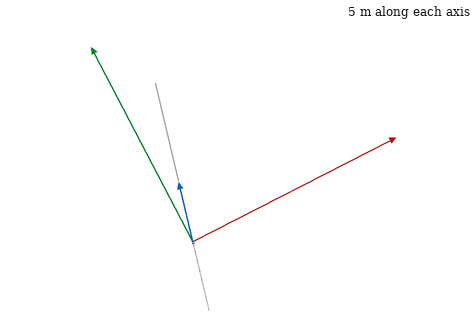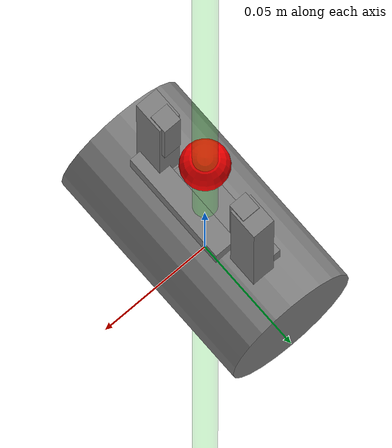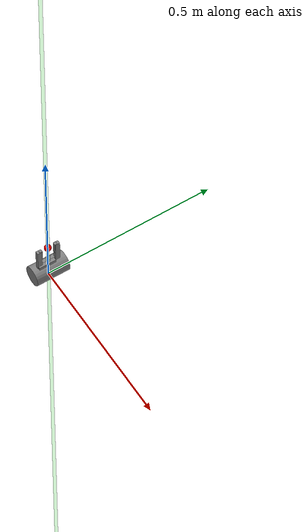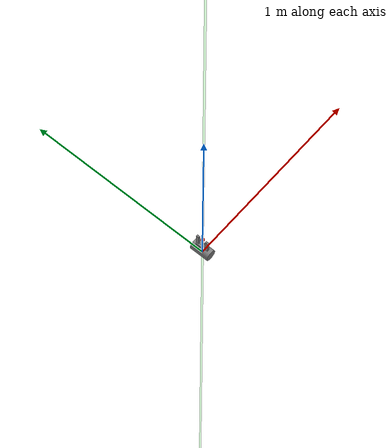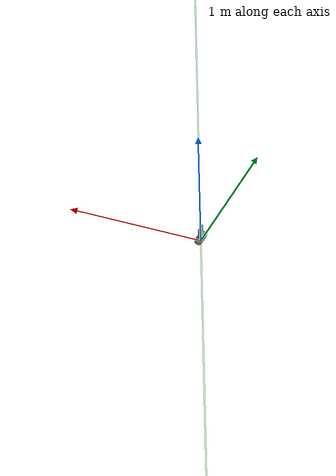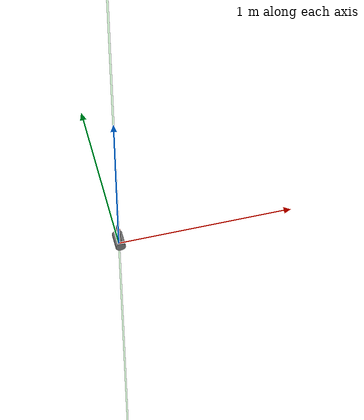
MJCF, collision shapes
<mujoco model="base">
    <asset>
        <mesh name="electric_gripper_base" file="meshes/two_finger_gripper/electric_gripper_base.STL"/>
        <mesh name="standard_narrow" file="meshes/two_finger_gripper/standard_narrow.STL"/>
        <mesh name="half_round_tip" file="meshes/two_finger_gripper/half_round_tip.STL"/>
    </asset>

    <actuator>
        <position ctrllimited="true" ctrlrange="-0.020833 0.0115" joint="l_gripper_r_finger_joint" kp="10000"
                  name="gripper_l_gripper_r_finger_joint" forcelimited="true" forcerange="-20 20"/>
        <position ctrllimited="true" ctrlrange="-0.0115 0.020833" joint="l_gripper_l_finger_joint" kp="10000"
                  name="gripper_l_gripper_l_finger_joint" forcelimited="true" forcerange="-20 20"/>

    </actuator>

    <worldbody>
        <body name="left_gripper_base" pos="0 0 0.025">
            <inertial pos="0 0 0" quat="-0.5 0.5 0.5 0.5" mass="0.3" diaginertia="3e-08 2e-08 2e-08"/>
            <geom name="left_gripper_base_visual" quat="0 0 0.707107 0.707107" type="mesh" contype="0" conaffinity="0"
                  group="1" mesh="electric_gripper_base"/>
            <geom name="left_gripper_base_collision" size="0.029 0.05" quat="0 0 0.707107 0.707107" type="cylinder"/>
            <body name="left_gripper" pos="0 0 0.095">
                <inertial pos="0 0 0" mass="0.0001" diaginertia="0 0 0"/>
                <!-- This site was added for visualization. -->
                <site name="l_g_grip_site" pos="0 0 0" size="0.01 0.01 0.01" rgba="1 0 0 1" type="sphere"
                      group="1"></site>
                <!-- This site was added for visualization. -->
                <site name="l_g_grip_site_cylinder" pos="0 0 0" size="0.005 10" rgba="0 1 0 0.1" type="cylinder"
                      group="1"></site>
            </body>
            <body name="l_gripper_l_finger" pos="0 0.01 0.02">
                <inertial pos="0 0 0" quat="0 0 0 -1" mass="0.02" diaginertia="0.01 0.01 0.01"/>
                <joint name="l_gripper_l_finger_joint" pos="0 0 0" axis="0 1 0" type="slide" limited="true"
                       range="-0.0115 0.020833" damping="100"/>
                <geom name="l_gripper_l_finger_visual" quat="0 0 0 -1" type="mesh" contype="0" conaffinity="0" group="1"
                      mesh="standard_narrow"/>

                <!-- conaffinity, contype changes -->
                <geom size="0.005 0.00675 0.0375" pos="0 0.01725 0.04" quat="0 0 0 -1" type="box" conaffinity="1"
                      contype="0" name="l_g_l_finger_g0" friction="0 0 0"/>
                <geom size="0.005 0.025 0.0085" pos="-0.005 -0.003 0.0083" quat="0 0 0 -1" type="box" conaffinity="1"
                      contype="0" name="l_g_l_finger_g1" friction="0 0 0"/>
                <body name="l_gripper_l_finger_tip" pos="0 0.01725 0.075">
                    <inertial pos="0 0 0" quat="0 0 0 1" mass="0.01" diaginertia="0.01 0.01 0.01"/>
                    <geom name="l_gripper_l_finger_tip_visual" quat="0 0 0 1" type="mesh" contype="0" conaffinity="0"
                          group="1" mesh="half_round_tip"/>
                    <geom size="0.004 0.004 0.0185" pos="0 -0.0045 -0.015" quat="0 0 0 1" type="box" conaffinity="1"
                          contype="0" name="l_g_l_fingertip_g0" friction="2 10 0.5"/>
                </body>
            </body>
            <body name="l_gripper_r_finger" pos="0 -0.01 0.02">
                <inertial pos="0 0 0" mass="0.02" diaginertia="0.01 0.01 0.01"/>
                <joint name="l_gripper_r_finger_joint" pos="0 0 0" axis="0 1 0" type="slide" limited="true"
                       range="-0.020833 0.0115" damping="100"/>
                <geom name="l_gripper_r_finger_visual" type="mesh" contype="0" conaffinity="0" group="1"
                      mesh="standard_narrow"/>
                <!-- conaffinity, contype changes -->
                <geom size="0.005 0.00675 0.0375" pos="0 -0.01725 0.04" type="box" conaffinity="1" contype="0"
                      name="l_g_r_finger_g0" friction="0 0 0"/>
                <geom size="0.005 0.025 0.0085" pos="0.005 0.003 0.0083" type="box" conaffinity="1" contype="0"
                      name="l_g_r_finger_g1" friction="0 0 0"/>
                <body name="l_gripper_r_finger_tip" pos="0 -0.01725 0.075">
                    <inertial pos="0 0 0" mass="0.01" diaginertia="0.01 0.01 0.01"/>
                    <geom name="l_gripper_r_finger_tip_visual" type="mesh" contype="0" conaffinity="0" group="1"
                          mesh="half_round_tip"/>
                    <geom size="0.004 0.004 0.0185" pos="0 0.0045 -0.015" type="box" conaffinity="1" contype="0"
                          name="l_g_r_fingertip_g0" friction="2 10 0.5"/>
                </body>
            </body>
        </body>
    </worldbody>
</mujoco>
